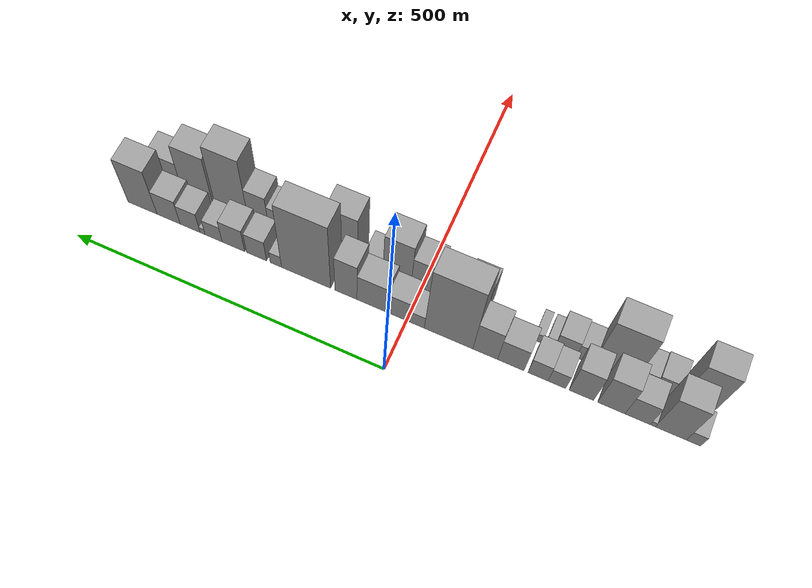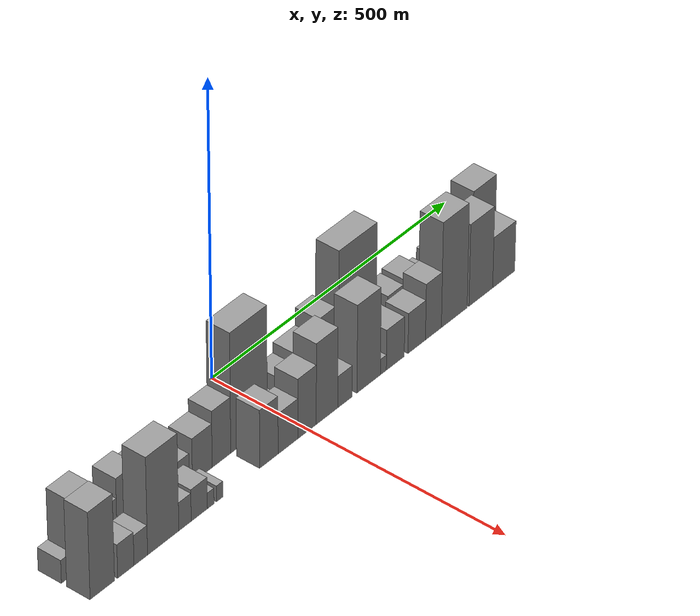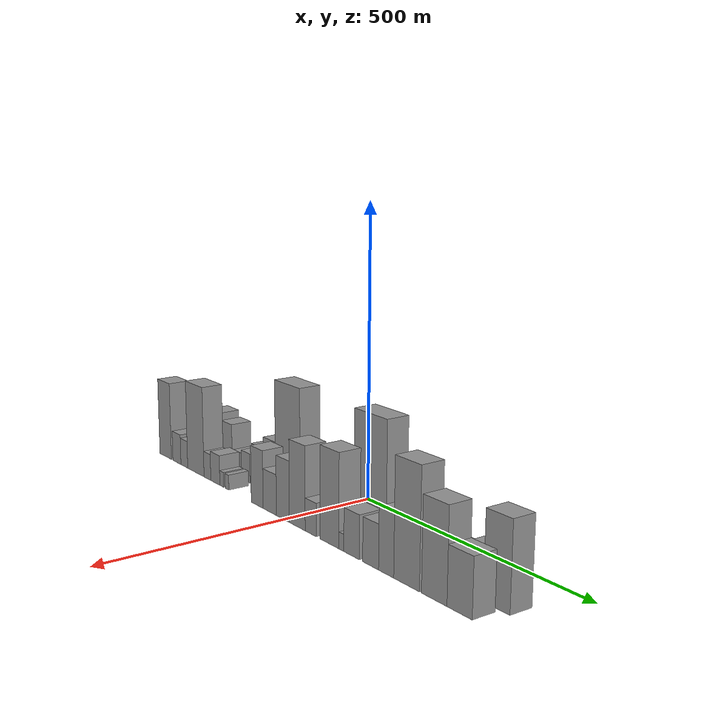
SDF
<sdf version="1.6">
 <world name="default">
  <scene>
   <sky><clouds><speed>12</speed></clouds></sky>
   <ambient>0.4 0.4 0.4 1</ambient>
   <background>0.7 0.7 0.7 1</background>
   <shadows>1</shadows>
  </scene>
  <gravity>0 0 -9.8066</gravity>
  <magnetic_field>6e-06 2.3e-05 -4.2e-05</magnetic_field>
  <physics default="0" name="default_physics" type="ode">
   <ode>
    <solver>
     <type>quick</type>
     <iters>10</iters>
     <sor>1.0</sor>
     <use_dynamic_moi_rescaling>0</use_dynamic_moi_rescaling>
    </solver>
    <constraints>
     <cfm>0</cfm>
     <erp>0.2</erp>
     <contact_max_correcting_vel>100</contact_max_correcting_vel>
     <contact_surface_layer>0.001</contact_surface_layer>
    </constraints>
   </ode>
   <max_step_size>0.004</max_step_size>
   <real_time_factor>1</real_time_factor>
   <real_time_update_rate>250</real_time_update_rate>
  </physics>
  <light name="sun" type="directional">
   <pose>0 0 10 0 0 0</pose>
   <diffuse>0.8 0.8 0.8 1</diffuse>
   <specular>0.2 0.2 0.2 1</specular>
   <attenuation>
    <range>1000</range>
    <constant>0.9</constant>
    <linear>0.01</linear>
    <quadratic>0.001</quadratic>
   </attenuation>
   <direction>-0.5 0.1 -0.9</direction>
  </light>
  <model name="building_1">
   <static>1</static>
   <pose>100.0000 -427.9123 0 0.000000 0.000000 0.000000</pose>
   <link name="link">
    <pose>0 0 19.50 0 0 0</pose>
    <collision name="collision"><geometry><box><size>40.0000 20.1754 39.0000</size></box></geometry></collision>
    <visual name="visual">
     <cast_shadows>0</cast_shadows>
     <geometry><box><size>40.0000 20.1754 39.0000</size></box></geometry>
     <material>
      <script>
       <uri>model://grey_wall/materials/scripts</uri>
       <uri>model://grey_wall/materials/textures</uri>
       <name>vrc/grey_wall</name>
      </script>
     </material>
    </visual>
   </link>
  </model>
  <model name="building_2">
   <static>1</static>
   <pose>100.0000 -395.5756 0 0.000000 0.000000 0.000000</pose>
   <link name="link">
    <pose>0 0 63.00 0 0 0</pose>
    <collision name="collision"><geometry><box><size>40.0000 44.4979 126.0000</size></box></geometry></collision>
    <visual name="visual">
     <cast_shadows>0</cast_shadows>
     <geometry><box><size>40.0000 44.4979 126.0000</size></box></geometry>
     <material>
      <script>
       <uri>model://grey_wall/materials/scripts</uri>
       <uri>model://grey_wall/materials/textures</uri>
       <name>vrc/grey_wall</name>
      </script>
     </material>
    </visual>
   </link>
  </model>
  <model name="building_3">
   <static>1</static>
   <pose>100.0000 -369.6705 0 0.000000 0.000000 0.000000</pose>
   <link name="link">
    <pose>0 0 7.50 0 0 0</pose>
    <collision name="collision"><geometry><box><size>40.0000 7.3124 15.0000</size></box></geometry></collision>
    <visual name="visual">
     <cast_shadows>0</cast_shadows>
     <geometry><box><size>40.0000 7.3124 15.0000</size></box></geometry>
     <material>
      <script>
       <uri>model://grey_wall/materials/scripts</uri>
       <uri>model://grey_wall/materials/textures</uri>
       <name>vrc/grey_wall</name>
      </script>
     </material>
    </visual>
   </link>
  </model>
  <model name="building_4">
   <static>1</static>
   <pose>100.0000 -347.7024 0 0.000000 0.000000 0.000000</pose>
   <link name="link">
    <pose>0 0 36.00 0 0 0</pose>
    <collision name="collision"><geometry><box><size>40.0000 36.6237 72.0000</size></box></geometry></collision>
    <visual name="visual">
     <cast_shadows>0</cast_shadows>
     <geometry><box><size>40.0000 36.6237 72.0000</size></box></geometry>
     <material>
      <script>
       <uri>model://grey_wall/materials/scripts</uri>
       <uri>model://grey_wall/materials/textures</uri>
       <name>vrc/grey_wall</name>
      </script>
     </material>
    </visual>
   </link>
  </model>
  <model name="building_5">
   <static>1</static>
   <pose>100.0000 -309.4797 0 0.000000 0.000000 0.000000</pose>
   <link name="link">
    <pose>0 0 52.50 0 0 0</pose>
    <collision name="collision"><geometry><box><size>40.0000 39.8216 105.0000</size></box></geometry></collision>
    <visual name="visual">
     <cast_shadows>0</cast_shadows>
     <geometry><box><size>40.0000 39.8216 105.0000</size></box></geometry>
     <material>
      <script>
       <uri>model://grey_wall/materials/scripts</uri>
       <uri>model://grey_wall/materials/textures</uri>
       <name>vrc/grey_wall</name>
      </script>
     </material>
    </visual>
   </link>
  </model>
  <model name="building_6">
   <static>1</static>
   <pose>100.0000 -265.4744 0 0.000000 0.000000 0.000000</pose>
   <link name="link">
    <pose>0 0 46.50 0 0 0</pose>
    <collision name="collision"><geometry><box><size>40.0000 36.1890 93.0000</size></box></geometry></collision>
    <visual name="visual">
     <cast_shadows>0</cast_shadows>
     <geometry><box><size>40.0000 36.1890 93.0000</size></box></geometry>
     <material>
      <script>
       <uri>model://grey_wall/materials/scripts</uri>
       <uri>model://grey_wall/materials/textures</uri>
       <name>vrc/grey_wall</name>
      </script>
     </material>
    </visual>
   </link>
  </model>
  <model name="building_7">
   <static>1</static>
   <pose>100.0000 -229.1972 0 0.000000 0.000000 0.000000</pose>
   <link name="link">
    <pose>0 0 24.00 0 0 0</pose>
    <collision name="collision"><geometry><box><size>40.0000 26.3653 48.0000</size></box></geometry></collision>
    <visual name="visual">
     <cast_shadows>0</cast_shadows>
     <geometry><box><size>40.0000 26.3653 48.0000</size></box></geometry>
     <material>
      <script>
       <uri>model://grey_wall/materials/scripts</uri>
       <uri>model://grey_wall/materials/textures</uri>
       <name>vrc/grey_wall</name>
      </script>
     </material>
    </visual>
   </link>
  </model>
  <model name="building_8">
   <static>1</static>
   <pose>100.0000 -201.0641 0 0.000000 0.000000 0.000000</pose>
   <link name="link">
    <pose>0 0 27.00 0 0 0</pose>
    <collision name="collision"><geometry><box><size>40.0000 29.9008 54.0000</size></box></geometry></collision>
    <visual name="visual">
     <cast_shadows>0</cast_shadows>
     <geometry><box><size>40.0000 29.9008 54.0000</size></box></geometry>
     <material>
      <script>
       <uri>model://grey_wall/materials/scripts</uri>
       <uri>model://grey_wall/materials/textures</uri>
       <name>vrc/grey_wall</name>
      </script>
     </material>
    </visual>
   </link>
  </model>
  <model name="building_9">
   <static>1</static>
   <pose>100.0000 -160.1070 0 0.000000 0.000000 0.000000</pose>
   <link name="link">
    <pose>0 0 37.50 0 0 0</pose>
    <collision name="collision"><geometry><box><size>40.0000 40.0134 75.0000</size></box></geometry></collision>
    <visual name="visual">
     <cast_shadows>0</cast_shadows>
     <geometry><box><size>40.0000 40.0134 75.0000</size></box></geometry>
     <material>
      <script>
       <uri>model://grey_wall/materials/scripts</uri>
       <uri>model://grey_wall/materials/textures</uri>
       <name>vrc/grey_wall</name>
      </script>
     </material>
    </visual>
   </link>
  </model>
  <model name="building_10">
   <static>1</static>
   <pose>100.0000 -121.2777 0 0.000000 0.000000 0.000000</pose>
   <link name="link">
    <pose>0 0 48.00 0 0 0</pose>
    <collision name="collision"><geometry><box><size>40.0000 37.6452 96.0000</size></box></geometry></collision>
    <visual name="visual">
     <cast_shadows>0</cast_shadows>
     <geometry><box><size>40.0000 37.6452 96.0000</size></box></geometry>
     <material>
      <script>
       <uri>model://grey_wall/materials/scripts</uri>
       <uri>model://grey_wall/materials/textures</uri>
       <name>vrc/grey_wall</name>
      </script>
     </material>
    </visual>
   </link>
  </model>
  <model name="building_11">
   <static>1</static>
   <pose>100.0000 -64.9338 0 0.000000 0.000000 0.000000</pose>
   <link name="link">
    <pose>0 0 102.00 0 0 0</pose>
    <collision name="collision"><geometry><box><size>40.0000 75.0425 204.0000</size></box></geometry></collision>
    <visual name="visual">
     <cast_shadows>0</cast_shadows>
     <geometry><box><size>40.0000 75.0425 204.0000</size></box></geometry>
     <material>
      <script>
       <uri>model://grey_wall/materials/scripts</uri>
       <uri>model://grey_wall/materials/textures</uri>
       <name>vrc/grey_wall</name>
      </script>
     </material>
    </visual>
   </link>
  </model>
  <model name="building_12">
   <static>1</static>
   <pose>100.0000 -15.8375 0 0.000000 0.000000 0.000000</pose>
   <link name="link">
    <pose>0 0 19.50 0 0 0</pose>
    <collision name="collision"><geometry><box><size>40.0000 23.1502 39.0000</size></box></geometry></collision>
    <visual name="visual">
     <cast_shadows>0</cast_shadows>
     <geometry><box><size>40.0000 23.1502 39.0000</size></box></geometry>
     <material>
      <script>
       <uri>model://grey_wall/materials/scripts</uri>
       <uri>model://grey_wall/materials/textures</uri>
       <name>vrc/grey_wall</name>
      </script>
     </material>
    </visual>
   </link>
  </model>
  <model name="building_13">
   <static>1</static>
   <pose>100.0000 13.8007 0 0.000000 0.000000 0.000000</pose>
   <link name="link">
    <pose>0 0 33.00 0 0 0</pose>
    <collision name="collision"><geometry><box><size>40.0000 36.1262 66.0000</size></box></geometry></collision>
    <visual name="visual">
     <cast_shadows>0</cast_shadows>
     <geometry><box><size>40.0000 36.1262 66.0000</size></box></geometry>
     <material>
      <script>
       <uri>model://grey_wall/materials/scripts</uri>
       <uri>model://grey_wall/materials/textures</uri>
       <name>vrc/grey_wall</name>
      </script>
     </material>
    </visual>
   </link>
  </model>
  <model name="building_14">
   <static>1</static>
   <pose>100.0000 55.2884 0 0.000000 0.000000 0.000000</pose>
   <link name="link">
    <pose>0 0 42.00 0 0 0</pose>
    <collision name="collision"><geometry><box><size>40.0000 46.8492 84.0000</size></box></geometry></collision>
    <visual name="visual">
     <cast_shadows>0</cast_shadows>
     <geometry><box><size>40.0000 46.8492 84.0000</size></box></geometry>
     <material>
      <script>
       <uri>model://grey_wall/materials/scripts</uri>
       <uri>model://grey_wall/materials/textures</uri>
       <name>vrc/grey_wall</name>
      </script>
     </material>
    </visual>
   </link>
  </model>
  <model name="building_15">
   <static>1</static>
   <pose>100.0000 96.3534 0 0.000000 0.000000 0.000000</pose>
   <link name="link">
    <pose>0 0 57.00 0 0 0</pose>
    <collision name="collision"><geometry><box><size>40.0000 35.2808 114.0000</size></box></geometry></collision>
    <visual name="visual">
     <cast_shadows>0</cast_shadows>
     <geometry><box><size>40.0000 35.2808 114.0000</size></box></geometry>
     <material>
      <script>
       <uri>model://grey_wall/materials/scripts</uri>
       <uri>model://grey_wall/materials/textures</uri>
       <name>vrc/grey_wall</name>
      </script>
     </material>
    </visual>
   </link>
  </model>
  <model name="building_16">
   <static>1</static>
   <pose>100.0000 160.8842 0 0.000000 0.000000 0.000000</pose>
   <link name="link">
    <pose>0 0 102.00 0 0 0</pose>
    <collision name="collision"><geometry><box><size>40.0000 79.7807 204.0000</size></box></geometry></collision>
    <visual name="visual">
     <cast_shadows>0</cast_shadows>
     <geometry><box><size>40.0000 79.7807 204.0000</size></box></geometry>
     <material>
      <script>
       <uri>model://grey_wall/materials/scripts</uri>
       <uri>model://grey_wall/materials/textures</uri>
       <name>vrc/grey_wall</name>
      </script>
     </material>
    </visual>
   </link>
  </model>
  <model name="building_17">
   <static>1</static>
   <pose>100.0000 210.0095 0 0.000000 0.000000 0.000000</pose>
   <link name="link">
    <pose>0 0 18.00 0 0 0</pose>
    <collision name="collision"><geometry><box><size>40.0000 18.4700 36.0000</size></box></geometry></collision>
    <visual name="visual">
     <cast_shadows>0</cast_shadows>
     <geometry><box><size>40.0000 18.4700 36.0000</size></box></geometry>
     <material>
      <script>
       <uri>model://grey_wall/materials/scripts</uri>
       <uri>model://grey_wall/materials/textures</uri>
       <name>vrc/grey_wall</name>
      </script>
     </material>
    </visual>
   </link>
  </model>
  <model name="building_18">
   <static>1</static>
   <pose>100.0000 241.8139 0 0.000000 0.000000 0.000000</pose>
   <link name="link">
    <pose>0 0 31.50 0 0 0</pose>
    <collision name="collision"><geometry><box><size>40.0000 33.1386 63.0000</size></box></geometry></collision>
    <visual name="visual">
     <cast_shadows>0</cast_shadows>
     <geometry><box><size>40.0000 33.1386 63.0000</size></box></geometry>
     <material>
      <script>
       <uri>model://grey_wall/materials/scripts</uri>
       <uri>model://grey_wall/materials/textures</uri>
       <name>vrc/grey_wall</name>
      </script>
     </material>
    </visual>
   </link>
  </model>
  <model name="building_19">
   <static>1</static>
   <pose>100.0000 280.2153 0 0.000000 0.000000 0.000000</pose>
   <link name="link">
    <pose>0 0 34.50 0 0 0</pose>
    <collision name="collision"><geometry><box><size>40.0000 37.6644 69.0000</size></box></geometry></collision>
    <visual name="visual">
     <cast_shadows>0</cast_shadows>
     <geometry><box><size>40.0000 37.6644 69.0000</size></box></geometry>
     <material>
      <script>
       <uri>model://grey_wall/materials/scripts</uri>
       <uri>model://grey_wall/materials/textures</uri>
       <name>vrc/grey_wall</name>
      </script>
     </material>
    </visual>
   </link>
  </model>
  <model name="building_20">
   <static>1</static>
   <pose>100.0000 313.4244 0 0.000000 0.000000 0.000000</pose>
   <link name="link">
    <pose>0 0 24.00 0 0 0</pose>
    <collision name="collision"><geometry><box><size>40.0000 28.7537 48.0000</size></box></geometry></collision>
    <visual name="visual">
     <cast_shadows>0</cast_shadows>
     <geometry><box><size>40.0000 28.7537 48.0000</size></box></geometry>
     <material>
      <script>
       <uri>model://grey_wall/materials/scripts</uri>
       <uri>model://grey_wall/materials/textures</uri>
       <name>vrc/grey_wall</name>
      </script>
     </material>
    </visual>
   </link>
  </model>
  <model name="building_21">
   <static>1</static>
   <pose>100.0000 331.9877 0 0.000000 0.000000 0.000000</pose>
   <link name="link">
    <pose>0 0 9.00 0 0 0</pose>
    <collision name="collision"><geometry><box><size>40.0000 8.3729 18.0000</size></box></geometry></collision>
    <visual name="visual">
     <cast_shadows>0</cast_shadows>
     <geometry><box><size>40.0000 8.3729 18.0000</size></box></geometry>
     <material>
      <script>
       <uri>model://grey_wall/materials/scripts</uri>
       <uri>model://grey_wall/materials/textures</uri>
       <name>vrc/grey_wall</name>
      </script>
     </material>
    </visual>
   </link>
  </model>
  <model name="building_22">
   <static>1</static>
   <pose>100.0000 352.9521 0 0.000000 0.000000 0.000000</pose>
   <link name="link">
    <pose>0 0 30.00 0 0 0</pose>
    <collision name="collision"><geometry><box><size>40.0000 33.5559 60.0000</size></box></geometry></collision>
    <visual name="visual">
     <cast_shadows>0</cast_shadows>
     <geometry><box><size>40.0000 33.5559 60.0000</size></box></geometry>
     <material>
      <script>
       <uri>model://grey_wall/materials/scripts</uri>
       <uri>model://grey_wall/materials/textures</uri>
       <name>vrc/grey_wall</name>
      </script>
     </material>
    </visual>
   </link>
  </model>
  <model name="building_23">
   <static>1</static>
   <pose>100.0000 389.5064 0 0.000000 0.000000 0.000000</pose>
   <link name="link">
    <pose>0 0 36.00 0 0 0</pose>
    <collision name="collision"><geometry><box><size>40.0000 39.5525 72.0000</size></box></geometry></collision>
    <visual name="visual">
     <cast_shadows>0</cast_shadows>
     <geometry><box><size>40.0000 39.5525 72.0000</size></box></geometry>
     <material>
      <script>
       <uri>model://grey_wall/materials/scripts</uri>
       <uri>model://grey_wall/materials/textures</uri>
       <name>vrc/grey_wall</name>
      </script>
     </material>
    </visual>
   </link>
  </model>
  <model name="building_24">
   <static>1</static>
   <pose>100.0000 434.2979 0 0.000000 0.000000 0.000000</pose>
   <link name="link">
    <pose>0 0 66.00 0 0 0</pose>
    <collision name="collision"><geometry><box><size>40.0000 50.0304 132.0000</size></box></geometry></collision>
    <visual name="visual">
     <cast_shadows>0</cast_shadows>
     <geometry><box><size>40.0000 50.0304 132.0000</size></box></geometry>
     <material>
      <script>
       <uri>model://grey_wall/materials/scripts</uri>
       <uri>model://grey_wall/materials/textures</uri>
       <name>vrc/grey_wall</name>
      </script>
     </material>
    </visual>
   </link>
  </model>
  <model name="building_25">
   <static>1</static>
   <pose>149.0000 -414.2627 0 0.000000 0.000000 0.000000</pose>
   <link name="link">
    <pose>0 0 73.50 0 0 0</pose>
    <collision name="collision"><geometry><box><size>40.0000 47.4746 147.0000</size></box></geometry></collision>
    <visual name="visual">
     <cast_shadows>0</cast_shadows>
     <geometry><box><size>40.0000 47.4746 147.0000</size></box></geometry>
     <material>
      <script>
       <uri>model://grey_wall/materials/scripts</uri>
       <uri>model://grey_wall/materials/textures</uri>
       <name>vrc/grey_wall</name>
      </script>
     </material>
    </visual>
   </link>
  </model>
  <model name="building_26">
   <static>1</static>
   <pose>149.0000 -368.5491 0 0.000000 0.000000 0.000000</pose>
   <link name="link">
    <pose>0 0 28.50 0 0 0</pose>
    <collision name="collision"><geometry><box><size>40.0000 31.9525 57.0000</size></box></geometry></collision>
    <visual name="visual">
     <cast_shadows>0</cast_shadows>
     <geometry><box><size>40.0000 31.9525 57.0000</size></box></geometry>
     <material>
      <script>
       <uri>model://grey_wall/materials/scripts</uri>
       <uri>model://grey_wall/materials/textures</uri>
       <name>vrc/grey_wall</name>
      </script>
     </material>
    </visual>
   </link>
  </model>
  <model name="building_27">
   <static>1</static>
   <pose>149.0000 -339.2804 0 0.000000 0.000000 0.000000</pose>
   <link name="link">
    <pose>0 0 25.50 0 0 0</pose>
    <collision name="collision"><geometry><box><size>40.0000 26.5847 51.0000</size></box></geometry></collision>
    <visual name="visual">
     <cast_shadows>0</cast_shadows>
     <geometry><box><size>40.0000 26.5847 51.0000</size></box></geometry>
     <material>
      <script>
       <uri>model://grey_wall/materials/scripts</uri>
       <uri>model://grey_wall/materials/textures</uri>
       <name>vrc/grey_wall</name>
      </script>
     </material>
    </visual>
   </link>
  </model>
  <model name="building_28">
   <static>1</static>
   <pose>149.0000 -295.0832 0 0.000000 0.000000 0.000000</pose>
   <link name="link">
    <pose>0 0 82.50 0 0 0</pose>
    <collision name="collision"><geometry><box><size>40.0000 61.8098 165.0000</size></box></geometry></collision>
    <visual name="visual">
     <cast_shadows>0</cast_shadows>
     <geometry><box><size>40.0000 61.8098 165.0000</size></box></geometry>
     <material>
      <script>
       <uri>model://grey_wall/materials/scripts</uri>
       <uri>model://grey_wall/materials/textures</uri>
       <name>vrc/grey_wall</name>
      </script>
     </material>
    </visual>
   </link>
  </model>
  <model name="building_29">
   <static>1</static>
   <pose>149.0000 -251.8682 0 0.000000 0.000000 0.000000</pose>
   <link name="link">
    <pose>0 0 24.00 0 0 0</pose>
    <collision name="collision"><geometry><box><size>40.0000 24.6201 48.0000</size></box></geometry></collision>
    <visual name="visual">
     <cast_shadows>0</cast_shadows>
     <geometry><box><size>40.0000 24.6201 48.0000</size></box></geometry>
     <material>
      <script>
       <uri>model://grey_wall/materials/scripts</uri>
       <uri>model://grey_wall/materials/textures</uri>
       <name>vrc/grey_wall</name>
      </script>
     </material>
    </visual>
   </link>
  </model>
  <model name="building_30">
   <static>1</static>
   <pose>149.0000 -223.3613 0 0.000000 0.000000 0.000000</pose>
   <link name="link">
    <pose>0 0 27.00 0 0 0</pose>
    <collision name="collision"><geometry><box><size>40.0000 32.3937 54.0000</size></box></geometry></collision>
    <visual name="visual">
     <cast_shadows>0</cast_shadows>
     <geometry><box><size>40.0000 32.3937 54.0000</size></box></geometry>
     <material>
      <script>
       <uri>model://grey_wall/materials/scripts</uri>
       <uri>model://grey_wall/materials/textures</uri>
       <name>vrc/grey_wall</name>
      </script>
     </material>
    </visual>
   </link>
  </model>
  <model name="building_31">
   <static>1</static>
   <pose>149.0000 -200.5132 0 0.000000 0.000000 0.000000</pose>
   <link name="link">
    <pose>0 0 13.50 0 0 0</pose>
    <collision name="collision"><geometry><box><size>40.0000 13.3026 27.0000</size></box></geometry></collision>
    <visual name="visual">
     <cast_shadows>0</cast_shadows>
     <geometry><box><size>40.0000 13.3026 27.0000</size></box></geometry>
     <material>
      <script>
       <uri>model://grey_wall/materials/scripts</uri>
       <uri>model://grey_wall/materials/textures</uri>
       <name>vrc/grey_wall</name>
      </script>
     </material>
    </visual>
   </link>
  </model>
  <model name="building_32">
   <static>1</static>
   <pose>149.0000 -182.4101 0 0.000000 0.000000 0.000000</pose>
   <link name="link">
    <pose>0 0 13.50 0 0 0</pose>
    <collision name="collision"><geometry><box><size>40.0000 12.9036 27.0000</size></box></geometry></collision>
    <visual name="visual">
     <cast_shadows>0</cast_shadows>
     <geometry><box><size>40.0000 12.9036 27.0000</size></box></geometry>
     <material>
      <script>
       <uri>model://grey_wall/materials/scripts</uri>
       <uri>model://grey_wall/materials/textures</uri>
       <name>vrc/grey_wall</name>
      </script>
     </material>
    </visual>
   </link>
  </model>
  <model name="building_33">
   <static>1</static>
   <pose>149.0000 -82.5987 0 0.000000 0.000000 0.000000</pose>
   <link name="link">
    <pose>0 0 49.50 0 0 0</pose>
    <collision name="collision"><geometry><box><size>40.0000 37.5730 99.0000</size></box></geometry></collision>
    <visual name="visual">
     <cast_shadows>0</cast_shadows>
     <geometry><box><size>40.0000 37.5730 99.0000</size></box></geometry>
     <material>
      <script>
       <uri>model://grey_wall/materials/scripts</uri>
       <uri>model://grey_wall/materials/textures</uri>
       <name>vrc/grey_wall</name>
      </script>
     </material>
    </visual>
   </link>
  </model>
  <model name="building_34">
   <static>1</static>
   <pose>149.0000 -43.5563 0 0.000000 0.000000 0.000000</pose>
   <link name="link">
    <pose>0 0 34.50 0 0 0</pose>
    <collision name="collision"><geometry><box><size>40.0000 40.5119 69.0000</size></box></geometry></collision>
    <visual name="visual">
     <cast_shadows>0</cast_shadows>
     <geometry><box><size>40.0000 40.5119 69.0000</size></box></geometry>
     <material>
      <script>
       <uri>model://grey_wall/materials/scripts</uri>
       <uri>model://grey_wall/materials/textures</uri>
       <name>vrc/grey_wall</name>
      </script>
     </material>
    </visual>
   </link>
  </model>
  <model name="building_35">
   <static>1</static>
   <pose>149.0000 -4.1934 0 0.000000 0.000000 0.000000</pose>
   <link name="link">
    <pose>0 0 51.00 0 0 0</pose>
    <collision name="collision"><geometry><box><size>40.0000 38.2138 102.0000</size></box></geometry></collision>
    <visual name="visual">
     <cast_shadows>0</cast_shadows>
     <geometry><box><size>40.0000 38.2138 102.0000</size></box></geometry>
     <material>
      <script>
       <uri>model://grey_wall/materials/scripts</uri>
       <uri>model://grey_wall/materials/textures</uri>
       <name>vrc/grey_wall</name>
      </script>
     </material>
    </visual>
   </link>
  </model>
  <model name="building_36">
   <static>1</static>
   <pose>149.0000 37.3871 0 0.000000 0.000000 0.000000</pose>
   <link name="link">
    <pose>0 0 69.00 0 0 0</pose>
    <collision name="collision"><geometry><box><size>40.0000 44.9474 138.0000</size></box></geometry></collision>
    <visual name="visual">
     <cast_shadows>0</cast_shadows>
     <geometry><box><size>40.0000 44.9474 138.0000</size></box></geometry>
     <material>
      <script>
       <uri>model://grey_wall/materials/scripts</uri>
       <uri>model://grey_wall/materials/textures</uri>
       <name>vrc/grey_wall</name>
      </script>
     </material>
    </visual>
   </link>
  </model>
  <model name="building_37">
   <static>1</static>
   <pose>149.0000 74.9807 0 0.000000 0.000000 0.000000</pose>
   <link name="link">
    <pose>0 0 27.00 0 0 0</pose>
    <collision name="collision"><geometry><box><size>40.0000 30.2396 54.0000</size></box></geometry></collision>
    <visual name="visual">
     <cast_shadows>0</cast_shadows>
     <geometry><box><size>40.0000 30.2396 54.0000</size></box></geometry>
     <material>
      <script>
       <uri>model://grey_wall/materials/scripts</uri>
       <uri>model://grey_wall/materials/textures</uri>
       <name>vrc/grey_wall</name>
      </script>
     </material>
    </visual>
   </link>
  </model>
  <model name="building_38">
   <static>1</static>
   <pose>149.0000 124.8397 0 0.000000 0.000000 0.000000</pose>
   <link name="link">
    <pose>0 0 75.00 0 0 0</pose>
    <collision name="collision"><geometry><box><size>40.0000 49.4785 150.0000</size></box></geometry></collision>
    <visual name="visual">
     <cast_shadows>0</cast_shadows>
     <geometry><box><size>40.0000 49.4785 150.0000</size></box></geometry>
     <material>
      <script>
       <uri>model://grey_wall/materials/scripts</uri>
       <uri>model://grey_wall/materials/textures</uri>
       <name>vrc/grey_wall</name>
      </script>
     </material>
    </visual>
   </link>
  </model>
  <model name="building_39">
   <static>1</static>
   <pose>149.0000 155.9124 0 0.000000 0.000000 0.000000</pose>
   <link name="link">
    <pose>0 0 13.50 0 0 0</pose>
    <collision name="collision"><geometry><box><size>40.0000 12.6669 27.0000</size></box></geometry></collision>
    <visual name="visual">
     <cast_shadows>0</cast_shadows>
     <geometry><box><size>40.0000 12.6669 27.0000</size></box></geometry>
     <material>
      <script>
       <uri>model://grey_wall/materials/scripts</uri>
       <uri>model://grey_wall/materials/textures</uri>
       <name>vrc/grey_wall</name>
      </script>
     </material>
    </visual>
   </link>
  </model>
  <model name="building_40">
   <static>1</static>
   <pose>149.0000 181.3563 0 0.000000 0.000000 0.000000</pose>
   <link name="link">
    <pose>0 0 34.50 0 0 0</pose>
    <collision name="collision"><geometry><box><size>40.0000 38.2211 69.0000</size></box></geometry></collision>
    <visual name="visual">
     <cast_shadows>0</cast_shadows>
     <geometry><box><size>40.0000 38.2211 69.0000</size></box></geometry>
     <material>
      <script>
       <uri>model://grey_wall/materials/scripts</uri>
       <uri>model://grey_wall/materials/textures</uri>
       <name>vrc/grey_wall</name>
      </script>
     </material>
    </visual>
   </link>
  </model>
  <model name="building_41">
   <static>1</static>
   <pose>149.0000 227.2228 0 0.000000 0.000000 0.000000</pose>
   <link name="link">
    <pose>0 0 34.50 0 0 0</pose>
    <collision name="collision"><geometry><box><size>40.0000 37.5117 69.0000</size></box></geometry></collision>
    <visual name="visual">
     <cast_shadows>0</cast_shadows>
     <geometry><box><size>40.0000 37.5117 69.0000</size></box></geometry>
     <material>
      <script>
       <uri>model://grey_wall/materials/scripts</uri>
       <uri>model://grey_wall/materials/textures</uri>
       <name>vrc/grey_wall</name>
      </script>
     </material>
    </visual>
   </link>
  </model>
  <model name="building_42">
   <static>1</static>
   <pose>149.0000 263.2117 0 0.000000 0.000000 0.000000</pose>
   <link name="link">
    <pose>0 0 48.00 0 0 0</pose>
    <collision name="collision"><geometry><box><size>40.0000 34.4662 96.0000</size></box></geometry></collision>
    <visual name="visual">
     <cast_shadows>0</cast_shadows>
     <geometry><box><size>40.0000 34.4662 96.0000</size></box></geometry>
     <material>
      <script>
       <uri>model://grey_wall/materials/scripts</uri>
       <uri>model://grey_wall/materials/textures</uri>
       <name>vrc/grey_wall</name>
      </script>
     </material>
    </visual>
   </link>
  </model>
  <model name="building_43">
   <static>1</static>
   <pose>149.0000 308.4231 0 0.000000 0.000000 0.000000</pose>
   <link name="link">
    <pose>0 0 90.00 0 0 0</pose>
    <collision name="collision"><geometry><box><size>40.0000 55.9567 180.0000</size></box></geometry></collision>
    <visual name="visual">
     <cast_shadows>0</cast_shadows>
     <geometry><box><size>40.0000 55.9567 180.0000</size></box></geometry>
     <material>
      <script>
       <uri>model://grey_wall/materials/scripts</uri>
       <uri>model://grey_wall/materials/textures</uri>
       <name>vrc/grey_wall</name>
      </script>
     </material>
    </visual>
   </link>
  </model>
  <model name="building_44">
   <static>1</static>
   <pose>149.0000 366.4248 0 0.000000 0.000000 0.000000</pose>
   <link name="link">
    <pose>0 0 70.50 0 0 0</pose>
    <collision name="collision"><geometry><box><size>40.0000 52.0466 141.0000</size></box></geometry></collision>
    <visual name="visual">
     <cast_shadows>0</cast_shadows>
     <geometry><box><size>40.0000 52.0466 141.0000</size></box></geometry>
     <material>
      <script>
       <uri>model://grey_wall/materials/scripts</uri>
       <uri>model://grey_wall/materials/textures</uri>
       <name>vrc/grey_wall</name>
      </script>
     </material>
    </visual>
   </link>
  </model>
  <model name="building_45">
   <static>1</static>
   <pose>149.0000 416.8478 0 0.000000 0.000000 0.000000</pose>
   <link name="link">
    <pose>0 0 43.50 0 0 0</pose>
    <collision name="collision"><geometry><box><size>40.0000 48.7995 87.0000</size></box></geometry></collision>
    <visual name="visual">
     <cast_shadows>0</cast_shadows>
     <geometry><box><size>40.0000 48.7995 87.0000</size></box></geometry>
     <material>
      <script>
       <uri>model://grey_wall/materials/scripts</uri>
       <uri>model://grey_wall/materials/textures</uri>
       <name>vrc/grey_wall</name>
      </script>
     </material>
    </visual>
   </link>
  </model>
 </world>
</sdf>
